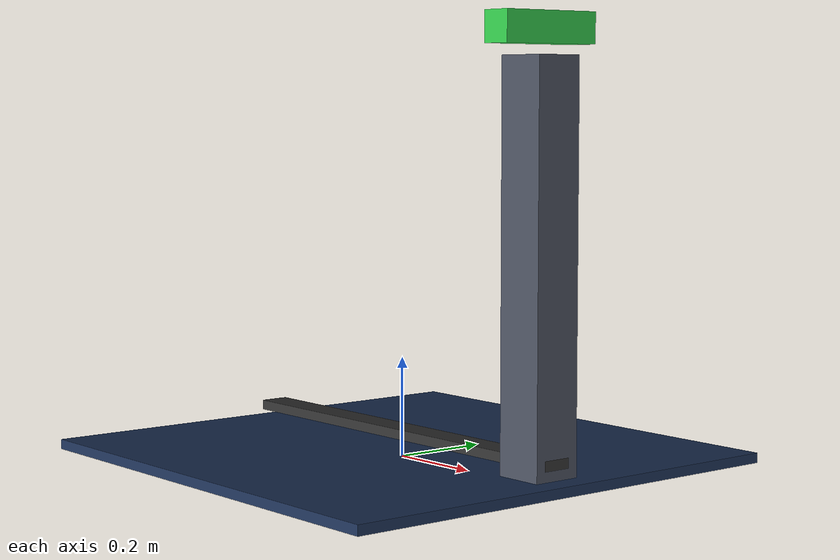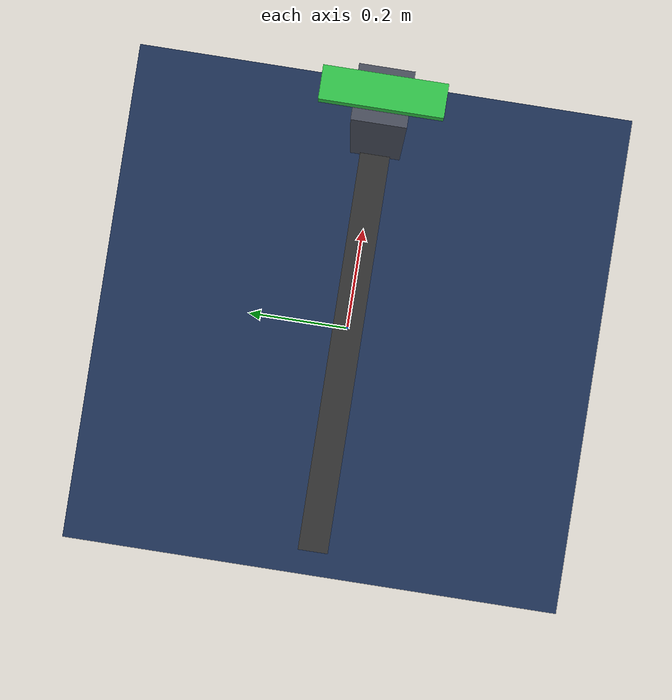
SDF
<?xml version="1.0" ?>
<sdf version="1.6">
<model name="charging_station">
  <static>true</static>
  <link name="link">
    <collision name="pole">
      <pose>0.4 0 0.4 0 0 0</pose>
      <geometry><box><size>0.1 0.1 0.8</size></box></geometry>
    </collision>
<visual name="pad">
<pose>0 0 0.01 0 0 0</pose>
<geometry><box><size>1.0 1.0 0.02</size></box></geometry>
<material><ambient>0.08 0.12 0.2 1</ambient>
<diffuse>0.12 0.2 0.35 1</diffuse>
<specular>0.3 0.3 0.3 1</specular></material>
</visual>
<visual name="pole_vis">
<pose>0.4 0 0.4 0 0 0</pose>
<geometry><box><size>0.1 0.1 0.8</size></box></geometry>
<material><ambient>0.12 0.13 0.16 1</ambient>
<diffuse>0.3 0.32 0.38 1</diffuse>
<specular>0.2 0.2 0.2 1</specular></material>
</visual>
<visual name="led">
<pose>0.4 0 0.85 0 0 0</pose>
<geometry><box><size>0.06 0.22 0.06</size></box></geometry>
<material><ambient>0.1 0.4 0.15 1</ambient>
<diffuse>0.2 0.8 0.3 1</diffuse>
<specular>0.1 0.1 0.1 1</specular>
<emissive>0.15 0.9 0.35 1</emissive></material>
</visual>
<visual name="cable">
<pose>0 0 0.05 0 0 0</pose>
<geometry><box><size>0.9 0.06 0.02</size></box></geometry>
<material><ambient>0.1 0.1 0.1 1</ambient>
<diffuse>0.2 0.2 0.2 1</diffuse>
<specular>0.1 0.1 0.1 1</specular></material>
</visual>
  </link>
</model>
</sdf>
